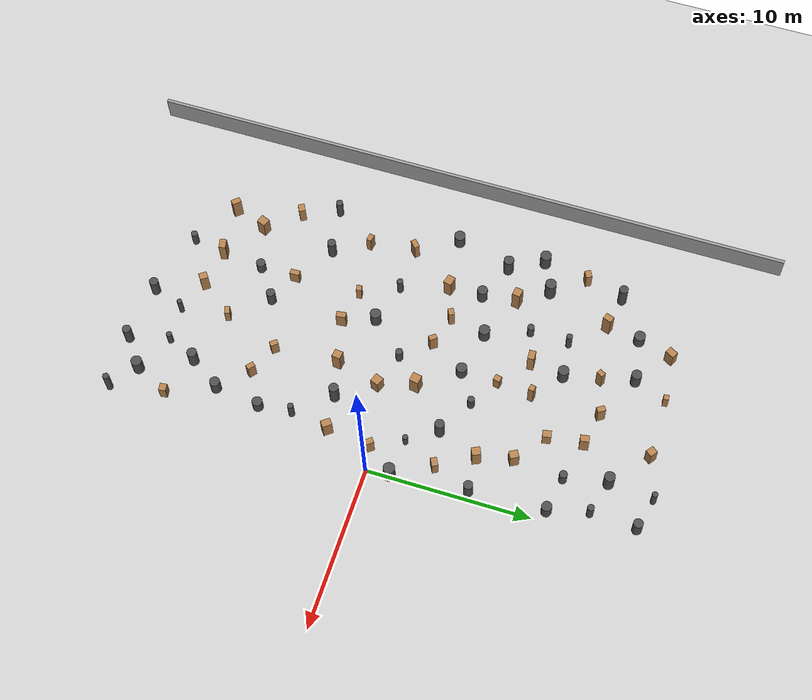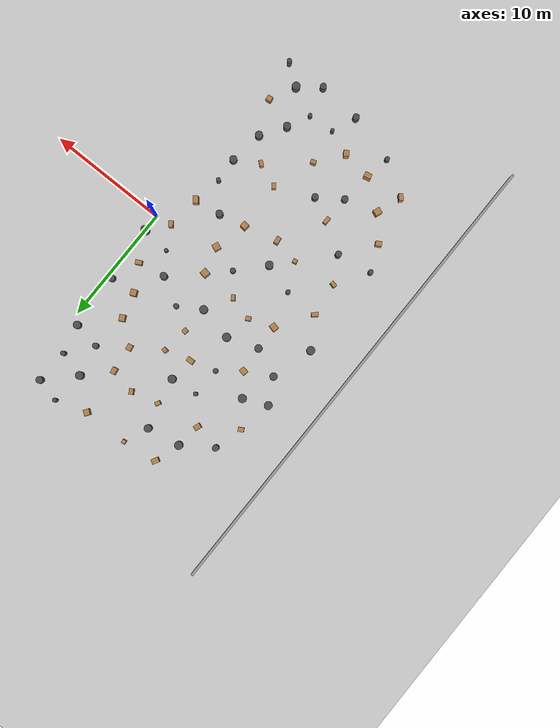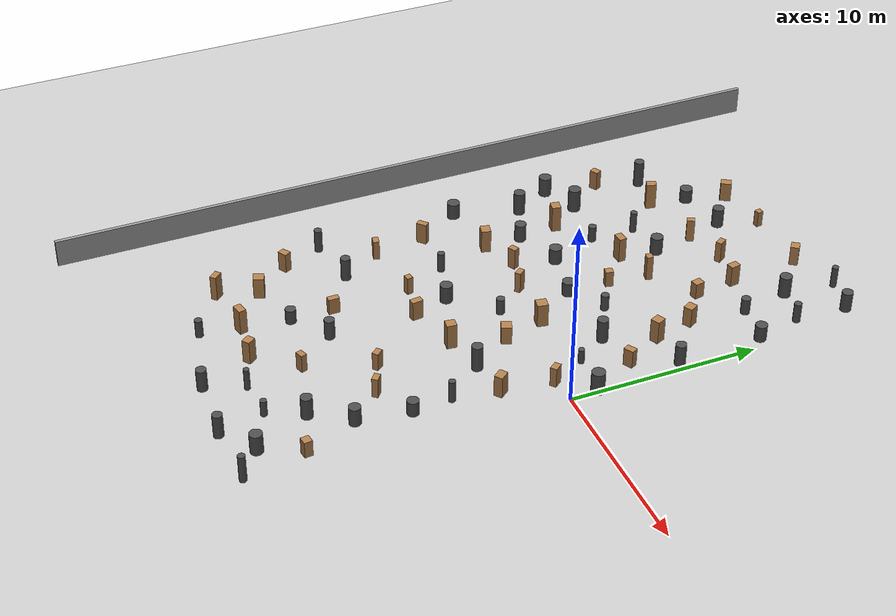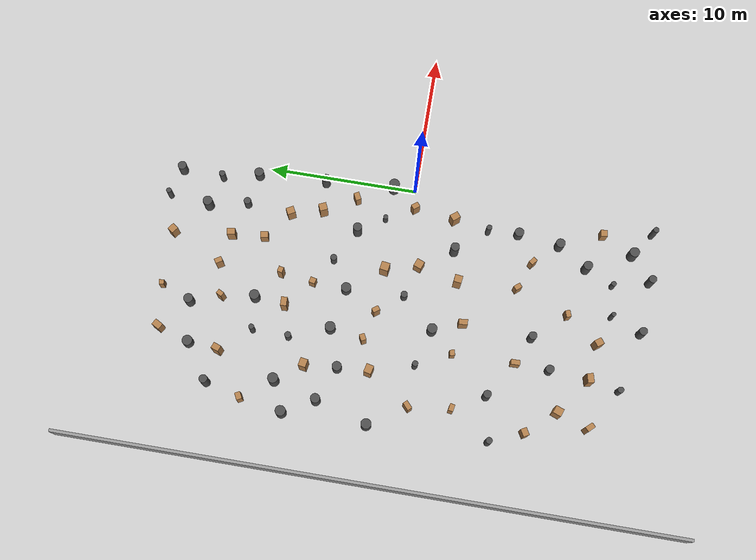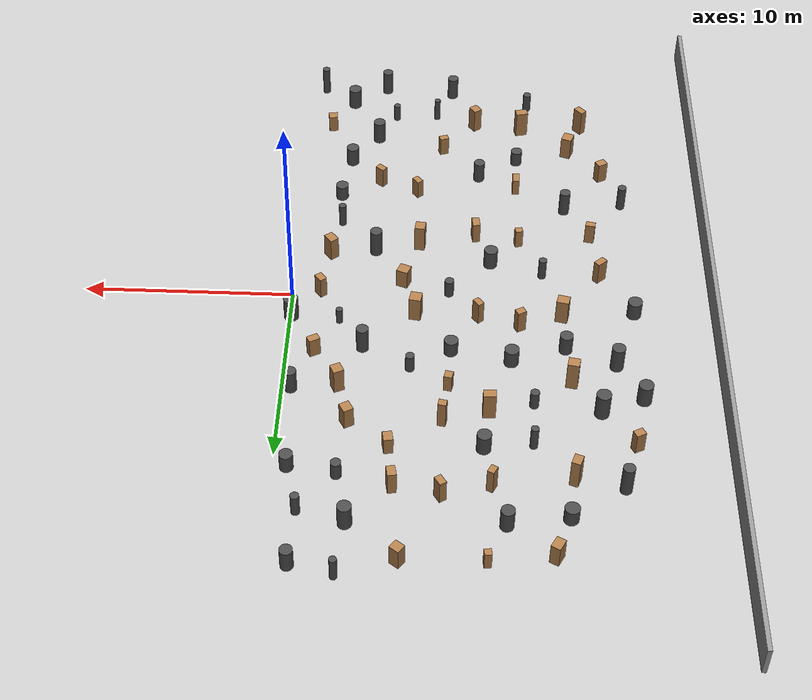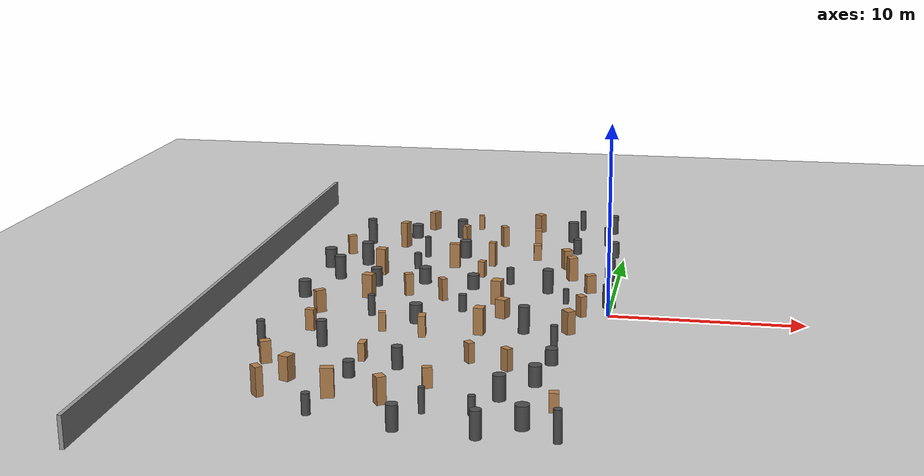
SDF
<sdf version="1.6">
 <world name="default">
  <model name="ground_plane">
   <static>1</static>
   <link name="link">
    <collision name="collision">
     <geometry><plane><normal>0 0 1</normal><size>80 80</size></plane></geometry>
     <surface><friction><ode><mu>0.5</mu><mu2>0.5</mu2></ode></friction></surface>
    </collision>
    <visual name="visual">
     <cast_shadows>0</cast_shadows>
     <geometry><plane><normal>0 0 1</normal><size>80 80</size></plane></geometry>
     <material>
      <script><uri>file://media/materials/scripts/gazebo.material</uri><name>Gazebo/Grey</name></script>
     </material>
    </visual>
   </link>
  </model>
  <model name="wall_west">
   <static>1</static>
   <link name="link">
    <collision name="collision"><geometry><box><size>0.2 40.4 1.5</size></box></geometry></collision>
    <visual name="visual">
     <geometry><box><size>0.2 40.4 1.5</size></box></geometry>
     <material>
      <script><uri>file://media/materials/scripts/gazebo.material</uri><name>Gazebo/Grey</name></script>
     </material>
    </visual>
   </link>
   <pose>-20.1 0 0.75 0 0 0</pose>
  </model>
  <model name="obs_000">
   <static>1</static>
   <link name="link">
    <collision name="collision">
     <geometry><cylinder><radius>0.22</radius><length>0.9</length></cylinder></geometry>
    </collision>
    <visual name="visual">
     <geometry><cylinder><radius>0.22</radius><length>0.9</length></cylinder></geometry>
     <material>
      <script><uri>file://media/materials/scripts/gazebo.material</uri><name>Gazebo/DarkGrey</name></script>
     </material>
    </visual>
   </link>
   <pose>-7.53 -0.40 0.45 0 0 0</pose>
  </model>
  <model name="obs_001">
   <static>1</static>
   <link name="link">
    <collision name="collision">
     <geometry><cylinder><radius>0.21</radius><length>1.3</length></cylinder></geometry>
    </collision>
    <visual name="visual">
     <geometry><cylinder><radius>0.21</radius><length>1.3</length></cylinder></geometry>
     <material>
      <script><uri>file://media/materials/scripts/gazebo.material</uri><name>Gazebo/DarkGrey</name></script>
     </material>
    </visual>
   </link>
   <pose>-16.14 -7.13 0.65 0 0 0</pose>
  </model>
  <model name="obs_002">
   <static>1</static>
   <link name="link">
    <collision name="collision">
     <geometry><cylinder><radius>0.31</radius><length>1.3</length></cylinder></geometry>
    </collision>
    <visual name="visual">
     <geometry><cylinder><radius>0.31</radius><length>1.3</length></cylinder></geometry>
     <material>
      <script><uri>file://media/materials/scripts/gazebo.material</uri><name>Gazebo/DarkGrey</name></script>
     </material>
    </visual>
   </link>
   <pose>-15.32 4.12 0.65 0 0 0</pose>
  </model>
  <model name="obs_003">
   <static>1</static>
   <link name="link">
    <collision name="collision"><geometry><box><size>0.32 0.42 1.3</size></box></geometry></collision>
    <visual name="visual">
     <geometry><box><size>0.32 0.42 1.3</size></box></geometry>
     <material>
      <script><uri>file://media/materials/scripts/gazebo.material</uri><name>Gazebo/Wood</name></script>
     </material>
    </visual>
   </link>
   <pose>-9.54 11.49 0.65 0 0 2.66</pose>
  </model>
  <model name="obs_004">
   <static>1</static>
   <link name="link">
    <collision name="collision"><geometry><box><size>0.59 0.33 0.9</size></box></geometry></collision>
    <visual name="visual">
     <geometry><box><size>0.59 0.33 0.9</size></box></geometry>
     <material>
      <script><uri>file://media/materials/scripts/gazebo.material</uri><name>Gazebo/Wood</name></script>
     </material>
    </visual>
   </link>
   <pose>-10.82 -8.19 0.45 0 0 1.58</pose>
  </model>
  <model name="obs_005">
   <static>1</static>
   <link name="link">
    <collision name="collision"><geometry><box><size>0.52 0.5 1.4</size></box></geometry></collision>
    <visual name="visual">
     <geometry><box><size>0.52 0.5 1.4</size></box></geometry>
     <material>
      <script><uri>file://media/materials/scripts/gazebo.material</uri><name>Gazebo/Wood</name></script>
     </material>
    </visual>
   </link>
   <pose>-6.04 -3.74 0.70 0 0 1.46</pose>
  </model>
  <model name="obs_008">
   <static>1</static>
   <link name="link">
    <collision name="collision">
     <geometry><cylinder><radius>0.24</radius><length>0.9</length></cylinder></geometry>
    </collision>
    <visual name="visual">
     <geometry><cylinder><radius>0.24</radius><length>0.9</length></cylinder></geometry>
     <material>
      <script><uri>file://media/materials/scripts/gazebo.material</uri><name>Gazebo/DarkGrey</name></script>
     </material>
    </visual>
   </link>
   <pose>-2.82 11.07 0.45 0 0 0</pose>
  </model>
  <model name="obs_010">
   <static>1</static>
   <link name="link">
    <collision name="collision">
     <geometry><cylinder><radius>0.34</radius><length>0.9</length></cylinder></geometry>
    </collision>
    <visual name="visual">
     <geometry><cylinder><radius>0.34</radius><length>0.9</length></cylinder></geometry>
     <material>
      <script><uri>file://media/materials/scripts/gazebo.material</uri><name>Gazebo/DarkGrey</name></script>
     </material>
    </visual>
   </link>
   <pose>-10.47 4.03 0.45 0 0 0</pose>
  </model>
  <model name="obs_012">
   <static>1</static>
   <link name="link">
    <collision name="collision"><geometry><box><size>0.46 0.5 1.1</size></box></geometry></collision>
    <visual name="visual">
     <geometry><box><size>0.46 0.5 1.1</size></box></geometry>
     <material>
      <script><uri>file://media/materials/scripts/gazebo.material</uri><name>Gazebo/Wood</name></script>
     </material>
    </visual>
   </link>
   <pose>-5.63 15.56 0.55 0 0 -2.21</pose>
  </model>
  <model name="obs_014">
   <static>1</static>
   <link name="link">
    <collision name="collision">
     <geometry><cylinder><radius>0.29</radius><length>1.3</length></cylinder></geometry>
    </collision>
    <visual name="visual">
     <geometry><cylinder><radius>0.29</radius><length>1.3</length></cylinder></geometry>
     <material>
      <script><uri>file://media/materials/scripts/gazebo.material</uri><name>Gazebo/DarkGrey</name></script>
     </material>
    </visual>
   </link>
   <pose>-3.56 3.39 0.65 0 0 0</pose>
  </model>
  <model name="obs_015">
   <static>1</static>
   <link name="link">
    <collision name="collision">
     <geometry><cylinder><radius>0.29</radius><length>1.4</length></cylinder></geometry>
    </collision>
    <visual name="visual">
     <geometry><cylinder><radius>0.29</radius><length>1.4</length></cylinder></geometry>
     <material>
      <script><uri>file://media/materials/scripts/gazebo.material</uri><name>Gazebo/DarkGrey</name></script>
     </material>
    </visual>
   </link>
   <pose>-3.89 -3.23 0.70 0 0 0</pose>
  </model>
  <model name="obs_016">
   <static>1</static>
   <link name="link">
    <collision name="collision"><geometry><box><size>0.36 0.59 1.1</size></box></geometry></collision>
    <visual name="visual">
     <geometry><box><size>0.36 0.59 1.1</size></box></geometry>
     <material>
      <script><uri>file://media/materials/scripts/gazebo.material</uri><name>Gazebo/Wood</name></script>
     </material>
    </visual>
   </link>
   <pose>-8.78 -4.48 0.55 0 0 0.13</pose>
  </model>
  <model name="obs_019">
   <static>1</static>
   <link name="link">
    <collision name="collision">
     <geometry><cylinder><radius>0.27</radius><length>1.1</length></cylinder></geometry>
    </collision>
    <visual name="visual">
     <geometry><cylinder><radius>0.27</radius><length>1.1</length></cylinder></geometry>
     <material>
      <script><uri>file://media/materials/scripts/gazebo.material</uri><name>Gazebo/DarkGrey</name></script>
     </material>
    </visual>
   </link>
   <pose>-8.94 -9.06 0.55 0 0 0</pose>
  </model>
  <model name="obs_022">
   <static>1</static>
   <link name="link">
    <collision name="collision"><geometry><box><size>0.32 0.47 1.1</size></box></geometry></collision>
    <visual name="visual">
     <geometry><box><size>0.32 0.47 1.1</size></box></geometry>
     <material>
      <script><uri>file://media/materials/scripts/gazebo.material</uri><name>Gazebo/Wood</name></script>
     </material>
    </visual>
   </link>
   <pose>-14.44 -4.53 0.55 0 0 -1.76</pose>
  </model>
  <model name="obs_023">
   <static>1</static>
   <link name="link">
    <collision name="collision"><geometry><box><size>0.48 0.53 1.1</size></box></geometry></collision>
    <visual name="visual">
     <geometry><box><size>0.48 0.53 1.1</size></box></geometry>
     <material>
      <script><uri>file://media/materials/scripts/gazebo.material</uri><name>Gazebo/Wood</name></script>
     </material>
    </visual>
   </link>
   <pose>-3.09 8.03 0.55 0 0 0.51</pose>
  </model>
  <model name="obs_024">
   <static>1</static>
   <link name="link">
    <collision name="collision"><geometry><box><size>0.49 0.54 1.5</size></box></geometry></collision>
    <visual name="visual">
     <geometry><box><size>0.49 0.54 1.5</size></box></geometry>
     <material>
      <script><uri>file://media/materials/scripts/gazebo.material</uri><name>Gazebo/Wood</name></script>
     </material>
    </visual>
   </link>
   <pose>-13.22 5.28 0.75 0 0 1.4</pose>
  </model>
  <model name="obs_025">
   <static>1</static>
   <link name="link">
    <collision name="collision"><geometry><box><size>0.49 0.34 1.2</size></box></geometry></collision>
    <visual name="visual">
     <geometry><box><size>0.49 0.34 1.2</size></box></geometry>
     <material>
      <script><uri>file://media/materials/scripts/gazebo.material</uri><name>Gazebo/Wood</name></script>
     </material>
    </visual>
   </link>
   <pose>-7.33 12.08 0.60 0 0 -1.01</pose>
  </model>
  <model name="obs_029">
   <static>1</static>
   <link name="link">
    <collision name="collision"><geometry><box><size>0.5 0.44 1.3</size></box></geometry></collision>
    <visual name="visual">
     <geometry><box><size>0.5 0.44 1.3</size></box></geometry>
     <material>
      <script><uri>file://media/materials/scripts/gazebo.material</uri><name>Gazebo/Wood</name></script>
     </material>
    </visual>
   </link>
   <pose>-8.71 -13.31 0.65 0 0 2.19</pose>
  </model>
  <model name="obs_030">
   <static>1</static>
   <link name="link">
    <collision name="collision"><geometry><box><size>0.45 0.43 0.9</size></box></geometry></collision>
    <visual name="visual">
     <geometry><box><size>0.45 0.43 0.9</size></box></geometry>
     <material>
      <script><uri>file://media/materials/scripts/gazebo.material</uri><name>Gazebo/Wood</name></script>
     </material>
    </visual>
   </link>
   <pose>-1.13 -12.95 0.45 0 0 0.13</pose>
  </model>
  <model name="obs_036">
   <static>1</static>
   <link name="link">
    <collision name="collision"><geometry><box><size>0.41 0.6 1.4</size></box></geometry></collision>
    <visual name="visual">
     <geometry><box><size>0.41 0.6 1.4</size></box></geometry>
     <material>
      <script><uri>file://media/materials/scripts/gazebo.material</uri><name>Gazebo/Wood</name></script>
     </material>
    </visual>
   </link>
   <pose>-11.15 -12.98 0.70 0 0 -1.35</pose>
  </model>
  <model name="obs_037">
   <static>1</static>
   <link name="link">
    <collision name="collision"><geometry><box><size>0.41 0.53 1.5</size></box></geometry></collision>
    <visual name="visual">
     <geometry><box><size>0.41 0.53 1.5</size></box></geometry>
     <material>
      <script><uri>file://media/materials/scripts/gazebo.material</uri><name>Gazebo/Wood</name></script>
     </material>
    </visual>
   </link>
   <pose>-13.15 10.97 0.75 0 0 -0.34</pose>
  </model>
  <model name="obs_039">
   <static>1</static>
   <link name="link">
    <collision name="collision">
     <geometry><cylinder><radius>0.15</radius><length>1.2</length></cylinder></geometry>
    </collision>
    <visual name="visual">
     <geometry><cylinder><radius>0.15</radius><length>1.2</length></cylinder></geometry>
     <material>
      <script><uri>file://media/materials/scripts/gazebo.material</uri><name>Gazebo/DarkGrey</name></script>
     </material>
    </visual>
   </link>
   <pose>-6.68 -14.07 0.60 0 0 0</pose>
  </model>
  <model name="obs_041">
   <static>1</static>
   <link name="link">
    <collision name="collision"><geometry><box><size>0.58 0.45 1.2</size></box></geometry></collision>
    <visual name="visual">
     <geometry><box><size>0.58 0.45 1.2</size></box></geometry>
     <material>
      <script><uri>file://media/materials/scripts/gazebo.material</uri><name>Gazebo/Wood</name></script>
     </material>
    </visual>
   </link>
   <pose>-1.70 -2.93 0.60 0 0 -0.9</pose>
  </model>
  <model name="obs_042">
   <static>1</static>
   <link name="link">
    <collision name="collision"><geometry><box><size>0.5 0.35 1.1</size></box></geometry></collision>
    <visual name="visual">
     <geometry><box><size>0.5 0.35 1.1</size></box></geometry>
     <material>
      <script><uri>file://media/materials/scripts/gazebo.material</uri><name>Gazebo/Wood</name></script>
     </material>
    </visual>
   </link>
   <pose>-1.37 -0.20 0.55 0 0 2.23</pose>
  </model>
  <model name="obs_044">
   <static>1</static>
   <link name="link">
    <collision name="collision"><geometry><box><size>0.41 0.38 0.9</size></box></geometry></collision>
    <visual name="visual">
     <geometry><box><size>0.41 0.38 0.9</size></box></geometry>
     <material>
      <script><uri>file://media/materials/scripts/gazebo.material</uri><name>Gazebo/Wood</name></script>
     </material>
    </visual>
   </link>
   <pose>-7.59 5.71 0.45 0 0 -1.78</pose>
  </model>
  <model name="obs_046">
   <static>1</static>
   <link name="link">
    <collision name="collision">
     <geometry><cylinder><radius>0.31</radius><length>1.0</length></cylinder></geometry>
    </collision>
    <visual name="visual">
     <geometry><cylinder><radius>0.31</radius><length>1.0</length></cylinder></geometry>
     <material>
      <script><uri>file://media/materials/scripts/gazebo.material</uri><name>Gazebo/DarkGrey</name></script>
     </material>
    </visual>
   </link>
   <pose>-2.34 -10.14 0.50 0 0 0</pose>
  </model>
  <model name="obs_048">
   <static>1</static>
   <link name="link">
    <collision name="collision"><geometry><box><size>0.54 0.4 1.2</size></box></geometry></collision>
    <visual name="visual">
     <geometry><box><size>0.54 0.4 1.2</size></box></geometry>
     <material>
      <script><uri>file://media/materials/scripts/gazebo.material</uri><name>Gazebo/Wood</name></script>
     </material>
    </visual>
   </link>
   <pose>-5.23 11.67 0.60 0 0 1.74</pose>
  </model>
  <model name="obs_052">
   <static>1</static>
   <link name="link">
    <collision name="collision">
     <geometry><cylinder><radius>0.26</radius><length>1.3</length></cylinder></geometry>
    </collision>
    <visual name="visual">
     <geometry><cylinder><radius>0.26</radius><length>1.3</length></cylinder></geometry>
     <material>
      <script><uri>file://media/materials/scripts/gazebo.material</uri><name>Gazebo/DarkGrey</name></script>
     </material>
    </visual>
   </link>
   <pose>-3.92 -16.35 0.65 0 0 0</pose>
  </model>
  <model name="obs_057">
   <static>1</static>
   <link name="link">
    <collision name="collision"><geometry><box><size>0.4 0.58 1.4</size></box></geometry></collision>
    <visual name="visual">
     <geometry><box><size>0.4 0.58 1.4</size></box></geometry>
     <material>
      <script><uri>file://media/materials/scripts/gazebo.material</uri><name>Gazebo/Wood</name></script>
     </material>
    </visual>
   </link>
   <pose>-9.43 7.26 0.70 0 0 -1.53</pose>
  </model>
  <model name="obs_058">
   <static>1</static>
   <link name="link">
    <collision name="collision">
     <geometry><cylinder><radius>0.21</radius><length>0.9</length></cylinder></geometry>
    </collision>
    <visual name="visual">
     <geometry><cylinder><radius>0.21</radius><length>0.9</length></cylinder></geometry>
     <material>
      <script><uri>file://media/materials/scripts/gazebo.material</uri><name>Gazebo/DarkGrey</name></script>
     </material>
    </visual>
   </link>
   <pose>-5.80 4.62 0.45 0 0 0</pose>
  </model>
  <model name="obs_059">
   <static>1</static>
   <link name="link">
    <collision name="collision">
     <geometry><cylinder><radius>0.3</radius><length>1.2</length></cylinder></geometry>
    </collision>
    <visual name="visual">
     <geometry><cylinder><radius>0.3</radius><length>1.2</length></cylinder></geometry>
     <material>
      <script><uri>file://media/materials/scripts/gazebo.material</uri><name>Gazebo/DarkGrey</name></script>
     </material>
    </visual>
   </link>
   <pose>-3.65 -12.08 0.60 0 0 0</pose>
  </model>
  <model name="obs_062">
   <static>1</static>
   <link name="link">
    <collision name="collision">
     <geometry><cylinder><radius>0.27</radius><length>1.2</length></cylinder></geometry>
    </collision>
    <visual name="visual">
     <geometry><cylinder><radius>0.27</radius><length>1.2</length></cylinder></geometry>
     <material>
      <script><uri>file://media/materials/scripts/gazebo.material</uri><name>Gazebo/DarkGrey</name></script>
     </material>
    </visual>
   </link>
   <pose>-7.49 -16.08 0.60 0 0 0</pose>
  </model>
  <model name="obs_063">
   <static>1</static>
   <link name="link">
    <collision name="collision">
     <geometry><cylinder><radius>0.35</radius><length>1.2</length></cylinder></geometry>
    </collision>
    <visual name="visual">
     <geometry><cylinder><radius>0.35</radius><length>1.2</length></cylinder></geometry>
     <material>
      <script><uri>file://media/materials/scripts/gazebo.material</uri><name>Gazebo/DarkGrey</name></script>
     </material>
    </visual>
   </link>
   <pose>-0.08 1.45 0.60 0 0 0</pose>
  </model>
  <model name="obs_069">
   <static>1</static>
   <link name="link">
    <collision name="collision"><geometry><box><size>0.58 0.5 1.3</size></box></geometry></collision>
    <visual name="visual">
     <geometry><box><size>0.58 0.5 1.3</size></box></geometry>
     <material>
      <script><uri>file://media/materials/scripts/gazebo.material</uri><name>Gazebo/Wood</name></script>
     </material>
    </visual>
   </link>
   <pose>-12.90 1.07 0.65 0 0 -0.23</pose>
  </model>
  <model name="obs_070">
   <static>1</static>
   <link name="link">
    <collision name="collision"><geometry><box><size>0.47 0.32 1.2</size></box></geometry></collision>
    <visual name="visual">
     <geometry><box><size>0.47 0.32 1.2</size></box></geometry>
     <material>
      <script><uri>file://media/materials/scripts/gazebo.material</uri><name>Gazebo/Wood</name></script>
     </material>
    </visual>
   </link>
   <pose>-8.91 1.27 0.60 0 0 2.23</pose>
  </model>
  <model name="obs_071">
   <static>1</static>
   <link name="link">
    <collision name="collision">
     <geometry><cylinder><radius>0.28</radius><length>1.2</length></cylinder></geometry>
    </collision>
    <visual name="visual">
     <geometry><cylinder><radius>0.28</radius><length>1.2</length></cylinder></geometry>
     <material>
      <script><uri>file://media/materials/scripts/gazebo.material</uri><name>Gazebo/DarkGrey</name></script>
     </material>
    </visual>
   </link>
   <pose>-0.44 6.09 0.60 0 0 0</pose>
  </model>
  <model name="obs_072">
   <static>1</static>
   <link name="link">
    <collision name="collision">
     <geometry><cylinder><radius>0.32</radius><length>1.2</length></cylinder></geometry>
    </collision>
    <visual name="visual">
     <geometry><cylinder><radius>0.32</radius><length>1.2</length></cylinder></geometry>
     <material>
      <script><uri>file://media/materials/scripts/gazebo.material</uri><name>Gazebo/DarkGrey</name></script>
     </material>
    </visual>
   </link>
   <pose>-3.35 13.66 0.60 0 0 0</pose>
  </model>
  <model name="obs_077">
   <static>1</static>
   <link name="link">
    <collision name="collision">
     <geometry><cylinder><radius>0.2</radius><length>1.0</length></cylinder></geometry>
    </collision>
    <visual name="visual">
     <geometry><cylinder><radius>0.2</radius><length>1.0</length></cylinder></geometry>
     <material>
      <script><uri>file://media/materials/scripts/gazebo.material</uri><name>Gazebo/DarkGrey</name></script>
     </material>
    </visual>
   </link>
   <pose>-11.51 -15.04 0.50 0 0 0</pose>
  </model>
  <model name="obs_078">
   <static>1</static>
   <link name="link">
    <collision name="collision"><geometry><box><size>0.4 0.51 1.1</size></box></geometry></collision>
    <visual name="visual">
     <geometry><box><size>0.4 0.51 1.1</size></box></geometry>
     <material>
      <script><uri>file://media/materials/scripts/gazebo.material</uri><name>Gazebo/Wood</name></script>
     </material>
    </visual>
   </link>
   <pose>-15.21 -9.31 0.55 0 0 -1.06</pose>
  </model>
  <model name="obs_081">
   <static>1</static>
   <link name="link">
    <collision name="collision">
     <geometry><cylinder><radius>0.34</radius><length>0.8</length></cylinder></geometry>
    </collision>
    <visual name="visual">
     <geometry><cylinder><radius>0.34</radius><length>0.8</length></cylinder></geometry>
     <material>
      <script><uri>file://media/materials/scripts/gazebo.material</uri><name>Gazebo/DarkGrey</name></script>
     </material>
    </visual>
   </link>
   <pose>-12.90 13.04 0.40 0 0 0</pose>
  </model>
  <model name="obs_083">
   <static>1</static>
   <link name="link">
    <collision name="collision">
     <geometry><cylinder><radius>0.2</radius><length>1.1</length></cylinder></geometry>
    </collision>
    <visual name="visual">
     <geometry><cylinder><radius>0.2</radius><length>1.1</length></cylinder></geometry>
     <material>
      <script><uri>file://media/materials/scripts/gazebo.material</uri><name>Gazebo/DarkGrey</name></script>
     </material>
    </visual>
   </link>
   <pose>-1.23 13.12 0.55 0 0 0</pose>
  </model>
  <model name="obs_085">
   <static>1</static>
   <link name="link">
    <collision name="collision"><geometry><box><size>0.32 0.32 0.9</size></box></geometry></collision>
    <visual name="visual">
     <geometry><box><size>0.32 0.32 0.9</size></box></geometry>
     <material>
      <script><uri>file://media/materials/scripts/gazebo.material</uri><name>Gazebo/Wood</name></script>
     </material>
    </visual>
   </link>
   <pose>-9.35 15.53 0.45 0 0 0.14</pose>
  </model>
  <model name="obs_086">
   <static>1</static>
   <link name="link">
    <collision name="collision">
     <geometry><cylinder><radius>0.19</radius><length>1.1</length></cylinder></geometry>
    </collision>
    <visual name="visual">
     <geometry><cylinder><radius>0.19</radius><length>1.1</length></cylinder></geometry>
     <material>
      <script><uri>file://media/materials/scripts/gazebo.material</uri><name>Gazebo/DarkGrey</name></script>
     </material>
    </visual>
   </link>
   <pose>-12.02 -1.81 0.55 0 0 0</pose>
  </model>
  <model name="obs_087">
   <static>1</static>
   <link name="link">
    <collision name="collision"><geometry><box><size>0.47 0.33 1.0</size></box></geometry></collision>
    <visual name="visual">
     <geometry><box><size>0.47 0.33 1.0</size></box></geometry>
     <material>
      <script><uri>file://media/materials/scripts/gazebo.material</uri><name>Gazebo/Wood</name></script>
     </material>
    </visual>
   </link>
   <pose>-5.80 -7.70 0.50 0 0 -0.89</pose>
  </model>
  <model name="obs_088">
   <static>1</static>
   <link name="link">
    <collision name="collision"><geometry><box><size>0.32 0.36 1.0</size></box></geometry></collision>
    <visual name="visual">
     <geometry><box><size>0.32 0.36 1.0</size></box></geometry>
     <material>
      <script><uri>file://media/materials/scripts/gazebo.material</uri><name>Gazebo/Wood</name></script>
     </material>
    </visual>
   </link>
   <pose>-10.90 -4.07 0.50 0 0 -1.37</pose>
  </model>
  <model name="obs_090">
   <static>1</static>
   <link name="link">
    <collision name="collision"><geometry><box><size>0.58 0.44 1.1</size></box></geometry></collision>
    <visual name="visual">
     <geometry><box><size>0.58 0.44 1.1</size></box></geometry>
     <material>
      <script><uri>file://media/materials/scripts/gazebo.material</uri><name>Gazebo/Wood</name></script>
     </material>
    </visual>
   </link>
   <pose>-12.23 15.12 0.55 0 0 1.07</pose>
  </model>
  <model name="obs_091">
   <static>1</static>
   <link name="link">
    <collision name="collision"><geometry><box><size>0.35 0.56 1.4</size></box></geometry></collision>
    <visual name="visual">
     <geometry><box><size>0.35 0.56 1.4</size></box></geometry>
     <material>
      <script><uri>file://media/materials/scripts/gazebo.material</uri><name>Gazebo/Wood</name></script>
     </material>
    </visual>
   </link>
   <pose>-14.27 -13.29 0.70 0 0 0.75</pose>
  </model>
  <model name="obs_092">
   <static>1</static>
   <link name="link">
    <collision name="collision">
     <geometry><cylinder><radius>0.27</radius><length>1.5</length></cylinder></geometry>
    </collision>
    <visual name="visual">
     <geometry><cylinder><radius>0.27</radius><length>1.5</length></cylinder></geometry>
     <material>
      <script><uri>file://media/materials/scripts/gazebo.material</uri><name>Gazebo/DarkGrey</name></script>
     </material>
    </visual>
   </link>
   <pose>-15.31 11.35 0.75 0 0 0</pose>
  </model>
  <model name="obs_097">
   <static>1</static>
   <link name="link">
    <collision name="collision"><geometry><box><size>0.52 0.56 1.2</size></box></geometry></collision>
    <visual name="visual">
     <geometry><box><size>0.52 0.56 1.2</size></box></geometry>
     <material>
      <script><uri>file://media/materials/scripts/gazebo.material</uri><name>Gazebo/Wood</name></script>
     </material>
    </visual>
   </link>
   <pose>-13.55 -11.24 0.60 0 0 2.78</pose>
  </model>
  <model name="obs_098">
   <static>1</static>
   <link name="link">
    <collision name="collision">
     <geometry><cylinder><radius>0.31</radius><length>0.9</length></cylinder></geometry>
    </collision>
    <visual name="visual">
     <geometry><cylinder><radius>0.31</radius><length>0.9</length></cylinder></geometry>
     <material>
      <script><uri>file://media/materials/scripts/gazebo.material</uri><name>Gazebo/DarkGrey</name></script>
     </material>
    </visual>
   </link>
   <pose>-0.64 10.70 0.45 0 0 0</pose>
  </model>
  <model name="obs_100">
   <static>1</static>
   <link name="link">
    <collision name="collision">
     <geometry><cylinder><radius>0.34</radius><length>0.9</length></cylinder></geometry>
    </collision>
    <visual name="visual">
     <geometry><cylinder><radius>0.34</radius><length>0.9</length></cylinder></geometry>
     <material>
      <script><uri>file://media/materials/scripts/gazebo.material</uri><name>Gazebo/DarkGrey</name></script>
     </material>
    </visual>
   </link>
   <pose>-16.33 0.67 0.45 0 0 0</pose>
  </model>
  <model name="obs_104">
   <static>1</static>
   <link name="link">
    <collision name="collision">
     <geometry><cylinder><radius>0.18</radius><length>1.2</length></cylinder></geometry>
    </collision>
    <visual name="visual">
     <geometry><cylinder><radius>0.18</radius><length>1.2</length></cylinder></geometry>
     <material>
      <script><uri>file://media/materials/scripts/gazebo.material</uri><name>Gazebo/DarkGrey</name></script>
     </material>
    </visual>
   </link>
   <pose>-11.40 9.05 0.60 0 0 0</pose>
  </model>
  <model name="obs_105">
   <static>1</static>
   <link name="link">
    <collision name="collision"><geometry><box><size>0.56 0.57 1.3</size></box></geometry></collision>
    <visual name="visual">
     <geometry><box><size>0.56 0.57 1.3</size></box></geometry>
     <material>
      <script><uri>file://media/materials/scripts/gazebo.material</uri><name>Gazebo/Wood</name></script>
     </material>
    </visual>
   </link>
   <pose>-5.96 1.15 0.65 0 0 -0.16</pose>
  </model>
  <model name="obs_106">
   <static>1</static>
   <link name="link">
    <collision name="collision">
     <geometry><cylinder><radius>0.34</radius><length>1.1</length></cylinder></geometry>
    </collision>
    <visual name="visual">
     <geometry><cylinder><radius>0.34</radius><length>1.1</length></cylinder></geometry>
     <material>
      <script><uri>file://media/materials/scripts/gazebo.material</uri><name>Gazebo/DarkGrey</name></script>
     </material>
    </visual>
   </link>
   <pose>-16.44 6.17 0.55 0 0 0</pose>
  </model>
  <model name="obs_108">
   <static>1</static>
   <link name="link">
    <collision name="collision"><geometry><box><size>0.45 0.32 1.0</size></box></geometry></collision>
    <visual name="visual">
     <geometry><box><size>0.45 0.32 1.0</size></box></geometry>
     <material>
      <script><uri>file://media/materials/scripts/gazebo.material</uri><name>Gazebo/Wood</name></script>
     </material>
    </visual>
   </link>
   <pose>-7.07 -11.17 0.50 0 0 -2.81</pose>
  </model>
  <model name="obs_110">
   <static>1</static>
   <link name="link">
    <collision name="collision">
     <geometry><cylinder><radius>0.18</radius><length>1.2</length></cylinder></geometry>
    </collision>
    <visual name="visual">
     <geometry><cylinder><radius>0.18</radius><length>1.2</length></cylinder></geometry>
     <material>
      <script><uri>file://media/materials/scripts/gazebo.material</uri><name>Gazebo/DarkGrey</name></script>
     </material>
    </visual>
   </link>
   <pose>-2.11 -5.29 0.60 0 0 0</pose>
  </model>
  <model name="obs_111">
   <static>1</static>
   <link name="link">
    <collision name="collision">
     <geometry><cylinder><radius>0.28</radius><length>0.8</length></cylinder></geometry>
    </collision>
    <visual name="visual">
     <geometry><cylinder><radius>0.28</radius><length>0.8</length></cylinder></geometry>
     <material>
      <script><uri>file://media/materials/scripts/gazebo.material</uri><name>Gazebo/DarkGrey</name></script>
     </material>
    </visual>
   </link>
   <pose>-10.88 -10.45 0.40 0 0 0</pose>
  </model>
  <model name="obs_112">
   <static>1</static>
   <link name="link">
    <collision name="collision">
     <geometry><cylinder><radius>0.26</radius><length>1.3</length></cylinder></geometry>
    </collision>
    <visual name="visual">
     <geometry><cylinder><radius>0.26</radius><length>1.3</length></cylinder></geometry>
     <material>
      <script><uri>file://media/materials/scripts/gazebo.material</uri><name>Gazebo/DarkGrey</name></script>
     </material>
    </visual>
   </link>
   <pose>-13.25 -6.64 0.65 0 0 0</pose>
  </model>
  <model name="obs_114">
   <static>1</static>
   <link name="link">
    <collision name="collision">
     <geometry><cylinder><radius>0.29</radius><length>1.1</length></cylinder></geometry>
    </collision>
    <visual name="visual">
     <geometry><cylinder><radius>0.29</radius><length>1.1</length></cylinder></geometry>
     <material>
      <script><uri>file://media/materials/scripts/gazebo.material</uri><name>Gazebo/DarkGrey</name></script>
     </material>
    </visual>
   </link>
   <pose>-1.11 15.92 0.55 0 0 0</pose>
  </model>
  <model name="obs_115">
   <static>1</static>
   <link name="link">
    <collision name="collision"><geometry><box><size>0.54 0.56 1.0</size></box></geometry></collision>
    <visual name="visual">
     <geometry><box><size>0.54 0.56 1.0</size></box></geometry>
     <material>
      <script><uri>file://media/materials/scripts/gazebo.material</uri><name>Gazebo/Wood</name></script>
     </material>
    </visual>
   </link>
   <pose>-5.33 -1.05 0.50 0 0 -1.94</pose>
  </model>
  <model name="obs_116">
   <static>1</static>
   <link name="link">
    <collision name="collision">
     <geometry><cylinder><radius>0.19</radius><length>1.5</length></cylinder></geometry>
    </collision>
    <visual name="visual">
     <geometry><cylinder><radius>0.19</radius><length>1.5</length></cylinder></geometry>
     <material>
      <script><uri>file://media/materials/scripts/gazebo.material</uri><name>Gazebo/DarkGrey</name></script>
     </material>
    </visual>
   </link>
   <pose>-0.55 -16.22 0.75 0 0 0</pose>
  </model>
  <model name="obs_117">
   <static>1</static>
   <link name="link">
    <collision name="collision"><geometry><box><size>0.43 0.52 0.9</size></box></geometry></collision>
    <visual name="visual">
     <geometry><box><size>0.43 0.52 0.9</size></box></geometry>
     <material>
      <script><uri>file://media/materials/scripts/gazebo.material</uri><name>Gazebo/Wood</name></script>
     </material>
    </visual>
   </link>
   <pose>-4.99 9.48 0.45 0 0 -2.96</pose>
  </model>
  <model name="obs_118">
   <static>1</static>
   <link name="link">
    <collision name="collision">
     <geometry><cylinder><radius>0.21</radius><length>0.9</length></cylinder></geometry>
    </collision>
    <visual name="visual">
     <geometry><cylinder><radius>0.21</radius><length>0.9</length></cylinder></geometry>
     <material>
      <script><uri>file://media/materials/scripts/gazebo.material</uri><name>Gazebo/DarkGrey</name></script>
     </material>
    </visual>
   </link>
   <pose>-11.47 6.65 0.45 0 0 0</pose>
  </model>
  <model name="obs_123">
   <static>1</static>
   <link name="link">
    <collision name="collision"><geometry><box><size>0.56 0.33 1.2</size></box></geometry></collision>
    <visual name="visual">
     <geometry><box><size>0.56 0.33 1.2</size></box></geometry>
     <material>
      <script><uri>file://media/materials/scripts/gazebo.material</uri><name>Gazebo/Wood</name></script>
     </material>
    </visual>
   </link>
   <pose>-14.79 -1.74 0.60 0 0 0.74</pose>
  </model>
  <model name="obs_125">
   <static>1</static>
   <link name="link">
    <collision name="collision">
     <geometry><cylinder><radius>0.33</radius><length>0.8</length></cylinder></geometry>
    </collision>
    <visual name="visual">
     <geometry><cylinder><radius>0.33</radius><length>0.8</length></cylinder></geometry>
     <material>
      <script><uri>file://media/materials/scripts/gazebo.material</uri><name>Gazebo/DarkGrey</name></script>
     </material>
    </visual>
   </link>
   <pose>-7.67 3.46 0.40 0 0 0</pose>
  </model>
  <model name="obs_129">
   <static>1</static>
   <link name="link">
    <collision name="collision"><geometry><box><size>0.34 0.38 1.4</size></box></geometry></collision>
    <visual name="visual">
     <geometry><box><size>0.34 0.38 1.4</size></box></geometry>
     <material>
      <script><uri>file://media/materials/scripts/gazebo.material</uri><name>Gazebo/Wood</name></script>
     </material>
    </visual>
   </link>
   <pose>-7.34 7.88 0.70 0 0 1.38</pose>
  </model>
  <model name="obs_131">
   <static>1</static>
   <link name="link">
    <collision name="collision"><geometry><box><size>0.48 0.32 1.1</size></box></geometry></collision>
    <visual name="visual">
     <geometry><box><size>0.48 0.32 1.1</size></box></geometry>
     <material>
      <script><uri>file://media/materials/scripts/gazebo.material</uri><name>Gazebo/Wood</name></script>
     </material>
    </visual>
   </link>
   <pose>-3.91 -8.47 0.55 0 0 2.47</pose>
  </model>
  <model name="obs_133">
   <static>1</static>
   <link name="link">
    <collision name="collision">
     <geometry><cylinder><radius>0.31</radius><length>0.8</length></cylinder></geometry>
    </collision>
    <visual name="visual">
     <geometry><cylinder><radius>0.31</radius><length>0.8</length></cylinder></geometry>
     <material>
      <script><uri>file://media/materials/scripts/gazebo.material</uri><name>Gazebo/DarkGrey</name></script>
     </material>
    </visual>
   </link>
   <pose>-1.96 -7.35 0.40 0 0 0</pose>
  </model>
  <model name="obs_134">
   <static>1</static>
   <link name="link">
    <collision name="collision"><geometry><box><size>0.37 0.47 1.1</size></box></geometry></collision>
    <visual name="visual">
     <geometry><box><size>0.37 0.47 1.1</size></box></geometry>
     <material>
      <script><uri>file://media/materials/scripts/gazebo.material</uri><name>Gazebo/Wood</name></script>
     </material>
    </visual>
   </link>
   <pose>-15.95 8.99 0.55 0 0 2.06</pose>
  </model>
  <model name="obs_136">
   <static>1</static>
   <link name="link">
    <collision name="collision">
     <geometry><cylinder><radius>0.31</radius><length>1.0</length></cylinder></geometry>
    </collision>
    <visual name="visual">
     <geometry><cylinder><radius>0.31</radius><length>1.0</length></cylinder></geometry>
     <material>
      <script><uri>file://media/materials/scripts/gazebo.material</uri><name>Gazebo/DarkGrey</name></script>
     </material>
    </visual>
   </link>
   <pose>-13.00 3.14 0.50 0 0 0</pose>
  </model>
  <model name="obs_137">
   <static>1</static>
   <link name="link">
    <collision name="collision"><geometry><box><size>0.37 0.54 1.0</size></box></geometry></collision>
    <visual name="visual">
     <geometry><box><size>0.37 0.54 1.0</size></box></geometry>
     <material>
      <script><uri>file://media/materials/scripts/gazebo.material</uri><name>Gazebo/Wood</name></script>
     </material>
    </visual>
   </link>
   <pose>-1.31 3.78 0.50 0 0 2.06</pose>
  </model>
  <model name="obs_140">
   <static>1</static>
   <link name="link">
    <collision name="collision">
     <geometry><cylinder><radius>0.16</radius><length>0.8</length></cylinder></geometry>
    </collision>
    <visual name="visual">
     <geometry><cylinder><radius>0.16</radius><length>0.8</length></cylinder></geometry>
     <material>
      <script><uri>file://media/materials/scripts/gazebo.material</uri><name>Gazebo/DarkGrey</name></script>
     </material>
    </visual>
   </link>
   <pose>-2.38 1.67 0.40 0 0 0</pose>
  </model>
  <model name="obs_144">
   <static>1</static>
   <link name="link">
    <collision name="collision"><geometry><box><size>0.5 0.52 1.3</size></box></geometry></collision>
    <visual name="visual">
     <geometry><box><size>0.5 0.52 1.3</size></box></geometry>
     <material>
      <script><uri>file://media/materials/scripts/gazebo.material</uri><name>Gazebo/Wood</name></script>
     </material>
    </visual>
   </link>
   <pose>-2.54 5.91 0.65 0 0 0.43</pose>
  </model>
  <model name="obs_145">
   <static>1</static>
   <link name="link">
    <collision name="collision">
     <geometry><cylinder><radius>0.34</radius><length>1.3</length></cylinder></geometry>
    </collision>
    <visual name="visual">
     <geometry><cylinder><radius>0.34</radius><length>1.3</length></cylinder></geometry>
     <material>
      <script><uri>file://media/materials/scripts/gazebo.material</uri><name>Gazebo/DarkGrey</name></script>
     </material>
    </visual>
   </link>
   <pose>-14.49 7.02 0.65 0 0 0</pose>
  </model>
  <model name="obs_147">
   <static>1</static>
   <link name="link">
    <collision name="collision">
     <geometry><cylinder><radius>0.33</radius><length>1.0</length></cylinder></geometry>
    </collision>
    <visual name="visual">
     <geometry><cylinder><radius>0.33</radius><length>1.0</length></cylinder></geometry>
     <material>
      <script><uri>file://media/materials/scripts/gazebo.material</uri><name>Gazebo/DarkGrey</name></script>
     </material>
    </visual>
   </link>
   <pose>-9.52 -2.55 0.50 0 0 0</pose>
  </model>
  <model name="obs_148">
   <static>1</static>
   <link name="link">
    <collision name="collision">
     <geometry><cylinder><radius>0.17</radius><length>1.2</length></cylinder></geometry>
    </collision>
    <visual name="visual">
     <geometry><cylinder><radius>0.17</radius><length>1.2</length></cylinder></geometry>
     <material>
      <script><uri>file://media/materials/scripts/gazebo.material</uri><name>Gazebo/DarkGrey</name></script>
     </material>
    </visual>
   </link>
   <pose>-3.06 16.39 0.60 0 0 0</pose>
  </model>
  <model name="obs_150">
   <static>1</static>
   <link name="link">
    <collision name="collision">
     <geometry><cylinder><radius>0.33</radius><length>1.1</length></cylinder></geometry>
    </collision>
    <visual name="visual">
     <geometry><cylinder><radius>0.33</radius><length>1.1</length></cylinder></geometry>
     <material>
      <script><uri>file://media/materials/scripts/gazebo.material</uri><name>Gazebo/DarkGrey</name></script>
     </material>
    </visual>
   </link>
   <pose>-2.19 -15.04 0.55 0 0 0</pose>
  </model>
  <model name="obs_152">
   <static>1</static>
   <link name="link">
    <collision name="collision">
     <geometry><cylinder><radius>0.33</radius><length>1.0</length></cylinder></geometry>
    </collision>
    <visual name="visual">
     <geometry><cylinder><radius>0.33</radius><length>1.0</length></cylinder></geometry>
     <material>
      <script><uri>file://media/materials/scripts/gazebo.material</uri><name>Gazebo/DarkGrey</name></script>
     </material>
    </visual>
   </link>
   <pose>-9.20 9.31 0.50 0 0 0</pose>
  </model>
  <model name="obs_155">
   <static>1</static>
   <link name="link">
    <collision name="collision">
     <geometry><cylinder><radius>0.31</radius><length>1.1</length></cylinder></geometry>
    </collision>
    <visual name="visual">
     <geometry><cylinder><radius>0.31</radius><length>1.1</length></cylinder></geometry>
     <material>
      <script><uri>file://media/materials/scripts/gazebo.material</uri><name>Gazebo/DarkGrey</name></script>
     </material>
    </visual>
   </link>
   <pose>-10.18 13.51 0.55 0 0 0</pose>
  </model>
  <model name="obs_156">
   <static>1</static>
   <link name="link">
    <collision name="collision">
     <geometry><cylinder><radius>0.17</radius><length>0.9</length></cylinder></geometry>
    </collision>
    <visual name="visual">
     <geometry><cylinder><radius>0.17</radius><length>0.9</length></cylinder></geometry>
     <material>
      <script><uri>file://media/materials/scripts/gazebo.material</uri><name>Gazebo/DarkGrey</name></script>
     </material>
    </visual>
   </link>
   <pose>-4.53 -13.93 0.45 0 0 0</pose>
  </model>
  <model name="obs_157">
   <static>1</static>
   <link name="link">
    <collision name="collision"><geometry><box><size>0.35 0.44 1.2</size></box></geometry></collision>
    <visual name="visual">
     <geometry><box><size>0.35 0.44 1.2</size></box></geometry>
     <material>
      <script><uri>file://media/materials/scripts/gazebo.material</uri><name>Gazebo/Wood</name></script>
     </material>
    </visual>
   </link>
   <pose>-10.89 1.80 0.60 0 0 2.06</pose>
  </model>
 </world>
</sdf>
